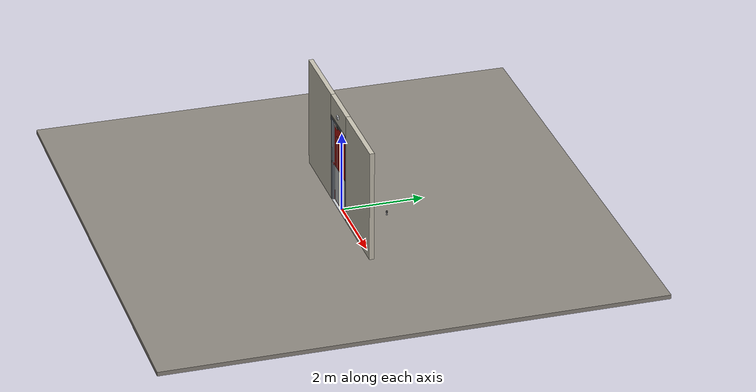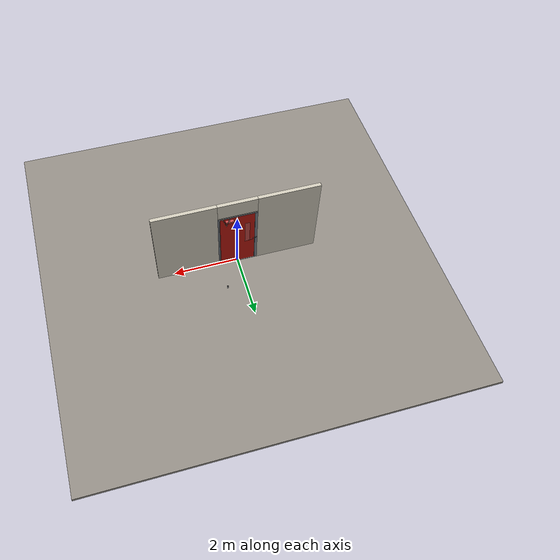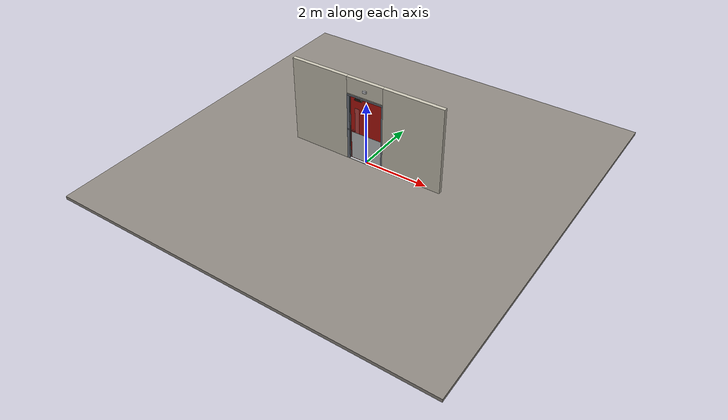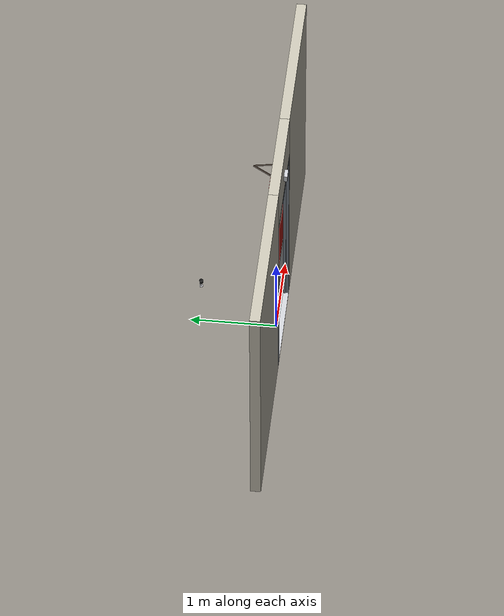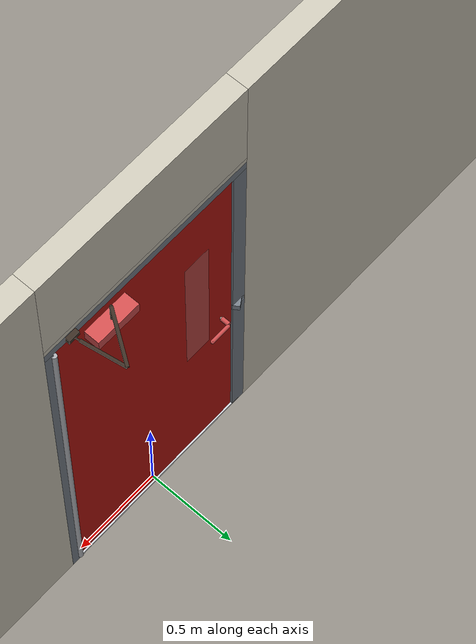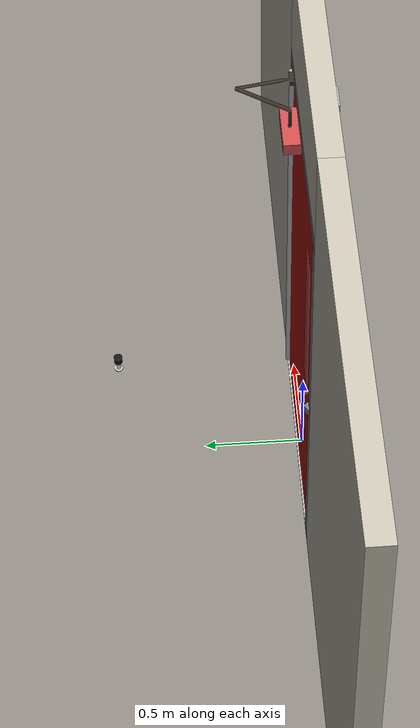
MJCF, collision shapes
<?xml version="1.0" ?>
<mujoco model="db0891_swing_single_full">
  <compiler angle="radian" meshdir="../../hardware" texturedir="../../textures" autolimits="true" inertiafromgeom="false"/>
  <option timestep="0.002" integrator="implicitfast" cone="elliptic" impratio="10" noslip_iterations="3">
    <flag multiccd="enable"/>
  </option>
  <size memory="16M"/>
  <default>
    <geom condim="4" solref="0.005 1" solimp="0.95 0.99 0.001"/>
    <joint solreflimit="0.005 1" solimplimit="0.95 0.99 0.001"/>
    <tendon solreflimit="0.005 1"/>
    <equality solref="0.002 1"/>
  </default>
  <visual>
    <headlight ambient="0.4 0.4 0.4" diffuse="0.7 0.7 0.7" specular="0.2 0.2 0.2"/>
    <quality shadowsize="4096"/>
    <map znear="0.01" zfar="60"/>
  </visual>
  <asset>
    <mesh name="closer_body_b226fdb10b" file="closer_body_b226fdb10b.obj"/>
    <mesh name="exit_sign_a6449bfa2c" file="exit_sign_a6449bfa2c.obj"/>
    <mesh name="lever_9f02b544cf" file="lever_9f02b544cf.obj"/>
    <material name="mat_floor" rgba="0.55 0.53 0.5 1" specular="0.2" shininess="0.15" reflectance="0"/>
    <material name="mat_wall" rgba="0.78 0.76 0.7 1" specular="0.2" shininess="0.1" reflectance="0"/>
    <material name="mat_leaf" rgba="0.7 0.08 0.05 1" specular="0.23" shininess="0.51" reflectance="0.02"/>
    <material name="mat_glass" rgba="0.85 0.92 0.95 0.25" specular="0.2" shininess="0.95" reflectance="0.1"/>
    <material name="mat_hinge" rgba="0.65 0.66 0.68 1" specular="0.74" shininess="0.5" reflectance="0.36"/>
    <material name="mat_op_nickel_satin" rgba="0.72 0.7 0.66 1" specular="0.8" shininess="0.65" reflectance="0.4"/>
    <material name="mat_trim" rgba="0.85 0.66 0.3 1" specular="0.8" shininess="0.75" reflectance="0.4"/>
    <material name="mat_bolt" rgba="0.85 0.66 0.3 1" specular="0.8" shininess="0.75" reflectance="0.4"/>
    <material name="mat_maglock" rgba="0.22 0.17 0.13 1" specular="0.8" shininess="0.6" reflectance="0.4"/>
    <material name="mat_frame" rgba="0.45 0.48 0.52 1" specular="0.32" shininess="0.6" reflectance="0.08"/>
    <material name="mat_seal" rgba="0.1 0.1 0.1 1" specular="0.2" shininess="0.1" reflectance="0"/>
    <material name="mat_threshold" rgba="0.8 0.81 0.83 1" specular="0.8" shininess="0.6" reflectance="0.4"/>
    <material name="mat_closer" rgba="0.22 0.17 0.13 1" specular="0.8" shininess="0.6" reflectance="0.4"/>
    <material name="mat_kick" rgba="0.75 0.76 0.77 1" specular="0.8" shininess="0.65" reflectance="0.4"/>
    <material name="mat_exit_sign" rgba="0.85 0.1 0.1 1" specular="0.2" shininess="0.6" reflectance="0"/>
    <material name="mat_sign_bracket" rgba="0.8 0.81 0.83 1" specular="0.8" shininess="0.6" reflectance="0.4"/>
    <material name="mat_bumper_stop" rgba="0.08 0.08 0.08 1" specular="0.2" shininess="0.1" reflectance="0"/>
    <material name="mat_stop_base" rgba="0.9 0.9 0.92 1" specular="0.8" shininess="0.9" reflectance="0.4"/>
    <texture name="skybox" type="skybox" builtin="gradient" rgb1="0.6 0.7 0.85" rgb2="0.9 0.92 0.95" width="256" height="256"/>
  </asset>
  <worldbody>
    <light name="sun" pos="1.5 -2.5 4" dir="-0.3 0.5 -0.8" directional="true" diffuse="0.8 0.8 0.8" specular="0.3 0.3 0.3" castshadow="true"/>
    <light name="fill" pos="-1.5 2.5 3" dir="0.3 -0.5 -0.7" directional="true" diffuse="0.35 0.35 0.4" castshadow="false"/>
    <camera name="robot_view" pos="0 -2.666313 1.812087" xyaxes="1 0 0 0 0.26963 0.962964" fovy="52"/>
    <camera name="far_view" pos="0 2.609312 1.812087" xyaxes="-1 0 0 0 -0.26963 0.962964" fovy="52"/>
    <camera name="iso" pos="-2.004737 -2.244263 2.234138" xyaxes="0.741536 -0.670913 0 0.242917 0.268487 0.932151" fovy="46"/>
    <camera name="detail_handle" pos="-0.183 -0.877 1.296" xyaxes="0.97561 0.219512 0 -0.070934 0.315262 0.94635" fovy="38"/>
    <geom name="floor" type="box" size="6 6 0.05" pos="0 0 -0.05" material="mat_floor" group="0" contype="1" conaffinity="1" friction="0.8 0.005 0.0001" density="2400"/>
    <geom name="wall_left" type="box" size="0.9415 0.0575 1.3735" pos="-1.5585 -0.0285 1.3735" material="mat_wall" group="0" contype="1" conaffinity="1" friction="0.6 0.005 0.0001" density="800"/>
    <geom name="wall_right" type="box" size="0.9565 0.0575 1.3735" pos="1.5435 -0.0285 1.3735" material="mat_wall" group="0" contype="1" conaffinity="1" friction="0.6 0.005 0.0001" density="800"/>
    <geom name="wall_header" type="box" size="0.602 0.0575 0.26" pos="-0.015 -0.0285 2.487" material="mat_wall" group="0" contype="1" conaffinity="1" friction="0.6 0.005 0.0001" density="800"/>
    <geom name="leaf_maglock_body" type="box" size="0.125 0.025 0.02" pos="-0.233 -0.057 2.082" material="mat_maglock" group="0" contype="1" conaffinity="1" friction="0.6 0.005 0.0001" density="2000"/>
    <geom name="leaf_maglock_bracket" type="box" size="0.09 0.025 0.0225" pos="-0.233 -0.057 2.1245" material="mat_maglock" group="1" contype="0" conaffinity="0" density="7850"/>
    <geom name="jamb_hinge" type="box" size="0.025 0.0575 1.0735" pos="0.562 -0.0285 1.0735" material="mat_frame" group="0" contype="1" conaffinity="1" friction="0.6 0.005 0.0001" density="300"/>
    <geom name="strike_1016_wall_n" type="box" size="0.04 0.03825 0.0183" pos="-0.577 -0.04775 1.016" material="mat_frame" group="0" contype="1" conaffinity="1" friction="0.6 0.005 0.0001" density="300"/>
    <geom name="strike_1016_wall_p" type="box" size="0.04 0.008 0.0183" pos="-0.577 0.0175 1.016" material="mat_frame" group="0" contype="1" conaffinity="1" friction="0.6 0.005 0.0001" density="300"/>
    <geom name="strike_1016_ramp" type="box" size="0.04 0.018028 0.0183" pos="-0.580282 0.018312 1.016" quat="0.957092 0 0 0.289784" material="mat_frame" group="0" contype="1" conaffinity="1" friction="0.12 0.005 0.0001" density="300"/>
    <geom name="strike_1016_back" type="box" size="0.0285 0.0095 0.0183" pos="-0.5885 0 1.016" material="mat_frame" group="0" contype="1" conaffinity="1" friction="0.6 0.005 0.0001" density="300"/>
    <geom name="jamb_strike_0" type="box" size="0.04 0.0575 0.49885" pos="-0.577 -0.0285 0.49885" material="mat_frame" group="0" contype="1" conaffinity="1" friction="0.6 0.005 0.0001" density="300"/>
    <geom name="jamb_strike_1" type="box" size="0.04 0.0575 0.55635" pos="-0.577 -0.0285 1.59065" material="mat_frame" group="0" contype="1" conaffinity="1" friction="0.6 0.005 0.0001" density="300"/>
    <geom name="jamb_head" type="box" size="0.602 0.0575 0.025" pos="-0.015 -0.0285 2.172" material="mat_frame" group="0" contype="1" conaffinity="1" friction="0.6 0.005 0.0001" density="300"/>
    <geom name="head_stud" type="box" size="0.602 0.0575 0.015" pos="-0.015 -0.0285 2.212" material="mat_wall" group="0" contype="1" conaffinity="1" friction="0.6 0.005 0.0001" density="500"/>
    <geom name="stop_hinge" type="box" size="0.0055 0.016 1.0735" pos="0.5315 -0.0385 1.0735" material="mat_frame" group="0" contype="1" conaffinity="1" friction="0.6 0.005 0.0001" density="300"/>
    <geom name="stop_strike" type="box" size="0.0055 0.016 1.0735" pos="-0.5315 -0.0385 1.0735" material="mat_frame" group="0" contype="1" conaffinity="1" friction="0.6 0.005 0.0001" density="300"/>
    <geom name="stop_head" type="box" size="0.537 0.016 0.0055" pos="0 -0.0385 2.1415" material="mat_frame" group="0" contype="1" conaffinity="1" friction="0.6 0.005 0.0001" density="300"/>
    <geom name="seal_hinge" type="box" size="0.004 0.0025 1.0735" pos="0.534 -0.0245 1.0735" material="mat_seal" group="1" contype="0" conaffinity="0" density="1100"/>
    <geom name="seal_strike" type="box" size="0.004 0.0025 1.0735" pos="-0.534 -0.0245 1.0735" material="mat_seal" group="1" contype="0" conaffinity="0" density="1100"/>
    <geom name="seal_head" type="box" size="0.517 0.0025 0.008" pos="0 -0.0245 2.135" material="mat_seal" group="1" contype="0" conaffinity="0" density="1100"/>
    <geom name="threshold" type="box" size="0.587 0.0575 0.0065" pos="0 -0.0285 0.0065" material="mat_threshold" group="0" contype="1" conaffinity="1" friction="0.5 0.005 0.0001" density="2700"/>
    <geom name="closer_bracket" type="box" size="0.03 0.012 0.014" pos="0.437 0.041 2.177" material="mat_closer" group="1" contype="0" conaffinity="0" density="2700"/>
    <geom name="exit_sign" type="mesh" mesh="exit_sign_a6449bfa2c" pos="0 -0.15 2.447" material="mat_exit_sign" group="2" contype="0" conaffinity="0" density="500"/>
    <geom name="exit_sign_bracket" type="box" size="0.05775 0.02 0.035" pos="0 -0.1055 2.447" material="mat_sign_bracket" group="2" contype="0" conaffinity="0" density="7850"/>
    <geom name="door_stop_base" type="cylinder" size="0.022 0.003" pos="0.55 0.93595 0.003" material="mat_stop_base" group="0" contype="1" conaffinity="1" friction="0.6 0.005 0.0001" density="7850"/>
    <geom name="door_stop_post" type="cylinder" size="0.012 0.0255" pos="0.55 0.93595 0.0315" material="mat_stop_base" group="0" contype="1" conaffinity="1" friction="0.6 0.005 0.0001" density="7850"/>
    <geom name="door_stop_bumper" type="cylinder" size="0.022 0.02" pos="0.55 0.93595 0.077" material="mat_bumper_stop" group="0" contype="1" conaffinity="1" friction="0.6 0.005 0.0001" density="1100"/>
    <site name="approach_point" pos="0 -1.5 0" quat="1 0 0 0" size="0.05" rgba="0.2 0.9 0.2 0.5" group="4"/>
    <site name="goal_point" pos="0 1.5 0" quat="1 0 0 0" size="0.05" rgba="0.2 0.9 0.2 0.5" group="4"/>
    <site name="door_plane_center" pos="0 0 1.0735" quat="1 0 0 0" size="0.02" rgba="0.2 0.9 0.2 0.5" group="4"/>
    <body name="leaf" pos="0.537 0 0">
      <inertial pos="-0.497605 0.003528 1.096088" mass="79.13314" quat="-0.494083 -0.478716 -0.513141 0.513224" diaginertia="7.536159754 34.660026678 42.122078536"/>
      <joint name="leaf_hinge" type="hinge" axis="0 0 -1" pos="-0.003 0.029 0" limited="true" range="0 1.570796" solreflimit="0.02 1" damping="10.49954" frictionloss="3.864023" stiffness="15.234311" springref="-3.060197" armature="0.02"/>
      <geom name="leaf_slab" type="box" size="0.5335 0.022 1.063" pos="-0.5365 0 1.08" material="mat_leaf" group="0" contype="1" conaffinity="1" friction="0.4 0.005 0.0001" density="1"/>
      <geom name="leaf_glass_0" type="box" size="0.075 0.0228 0.4252" pos="-0.84763 0 1.33512" material="mat_glass" group="1" contype="0" conaffinity="0" density="1"/>
      <geom name="hinge_continuous" type="cylinder" size="0.0136 1.053" pos="-0.003 0.029 1.08" material="mat_hinge" group="1" contype="0" conaffinity="0" density="2700"/>
      <geom name="leaf_latch_bolt_faceplate" type="box" size="0.0006 0.014 0.0283" pos="-1.0694 0 1.016" material="mat_bolt" group="1" contype="0" conaffinity="0" density="8500"/>
      <geom name="leaf_maglock_armature" type="box" size="0.09 0.005 0.02" pos="-0.77 -0.027 2.082" material="mat_maglock" group="1" contype="0" conaffinity="0" density="7800"/>
      <geom name="closer_body" type="mesh" mesh="closer_body_b226fdb10b" pos="-0.3 0.022 2.046" quat="0 0 0.707107 0.707107" material="mat_closer" group="1" contype="0" conaffinity="0" density="2000"/>
      <geom name="closer_body_col" type="box" size="0.12 0.04 0.03" pos="-0.3 0.062 2.046" material="mat_closer" group="3" contype="1" conaffinity="1" rgba="0.8 0.3 0.3 0.25" friction="0.6 0.005 0.0001" density="2000"/>
      <geom name="closer_pinion_shaft" type="cylinder" size="0.008 0.0655" pos="-0.3 0.064 2.1115" material="mat_closer" group="1" contype="0" conaffinity="0" density="2700"/>
      <geom name="armor_plate" type="box" size="0.5035 0.0008 0.45" pos="-0.5365 -0.0228 0.477" material="mat_kick" group="2" contype="0" conaffinity="0" density="7900"/>
      <site name="leaf_edge_mid" pos="-1.07 0 1.063" quat="1 0 0 0" size="0.02" rgba="0.2 0.9 0.2 0.5" group="4"/>
      <body name="leaf_handle" pos="-1 0 1.016">
        <inertial pos="0.028544 0 0" mass="0.978187" quat="0 0.707107 0.707107 0" diaginertia="0.001772047 0.003604455 0.005198299"/>
        <joint name="leaf_handle_hinge" type="hinge" axis="0 1 0" limited="true" range="0 0.96" damping="0.245624" frictionloss="0.048" stiffness="1.2" springref="-0.458333" armature="0.01"/>
        <geom name="leaf_handle_spindle" type="cylinder" size="0.006 0.03" pos="0 0 0" quat="0.707107 -0.707107 0 0" material="mat_op_nickel_satin" group="1" contype="0" conaffinity="0" density="7850"/>
        <geom name="leaf_handle_lever_n" type="mesh" mesh="lever_9f02b544cf" pos="0 -0.022 0" quat="0 0 -0.707107 0.707107" material="mat_op_nickel_satin" group="1" contype="0" conaffinity="0" density="3000"/>
        <geom name="leaf_handle_lever_col_n" type="capsule" size="0.0095 0.053" pos="0.0625 -0.077 0" quat="0.707107 0 0.707107 0" material="mat_op_nickel_satin" group="3" contype="1" conaffinity="1" rgba="0.8 0.3 0.3 0.25" friction="0.7 0.01 0.0001" density="3000"/>
        <geom name="leaf_handle_hub_col_n" type="cylinder" size="0.012 0.022" pos="0 -0.052 0" quat="0.707107 -0.707107 0 0" material="mat_op_nickel_satin" group="3" contype="1" conaffinity="1" rgba="0.8 0.3 0.3 0.25" friction="0.6 0.005 0.0001" density="3000"/>
        <geom name="leaf_handle_lever_p" type="mesh" mesh="lever_9f02b544cf" pos="0 0.022 0" quat="0 0 0.707107 0.707107" material="mat_op_nickel_satin" group="1" contype="0" conaffinity="0" density="3000"/>
        <geom name="leaf_handle_lever_col_p" type="capsule" size="0.0095 0.053" pos="0.0625 0.077 0" quat="0.707107 0 0.707107 0" material="mat_op_nickel_satin" group="3" contype="1" conaffinity="1" rgba="0.8 0.3 0.3 0.25" friction="0.7 0.01 0.0001" density="3000"/>
        <geom name="leaf_handle_hub_col_p" type="cylinder" size="0.012 0.022" pos="0 0.052 0" quat="0.707107 -0.707107 0 0" material="mat_op_nickel_satin" group="3" contype="1" conaffinity="1" rgba="0.8 0.3 0.3 0.25" friction="0.6 0.005 0.0001" density="3000"/>
        <site name="leaf_handle_grip_n" pos="0.1 -0.077 0" quat="1 0 0 0" size="0.012" rgba="0.2 0.9 0.2 0.5" group="4"/>
        <site name="leaf_handle_grip_p" pos="0.1 0.077 0" quat="1 0 0 0" size="0.012" rgba="0.2 0.9 0.2 0.5" group="4"/>
      </body>
      <body name="leaf_latch_bolt" pos="-1.07 0 1.016">
        <inertial pos="0.0055 0 0" mass="0.074627" quat="0.92388 0.382683 0 0" diaginertia="0.000002271 0.000013255 0.000013255"/>
        <joint name="leaf_latch_bolt_slide" type="slide" axis="1 0 0" limited="true" range="0 0.019" damping="2" frictionloss="0.3" stiffness="600" springref="-0.01" armature="0.1"/>
        <geom name="leaf_latch_bolt_capsule" type="capsule" size="0.008 0.0165" pos="0.0055 0 0" quat="0.707107 0 -0.707107 0" material="mat_bolt" group="0" contype="1" conaffinity="1" friction="0.2 0.005 0.0001" density="8500"/>
      </body>
      <body name="closer_arm_main" pos="-0.3 0.064 2.177" quat="0.881485 0 0 0.472212">
        <inertial pos="0.14 0 0" mass="0.12096" quat="1 0 0 0" diaginertia="0.000003588 0.00079128 0.000792852"/>
        <joint name="closer_pinion" type="hinge" axis="0 0 1" limited="false" damping="0.01" armature="0.002"/>
        <geom name="closer_arm_main_geom" type="box" size="0.14 0.008 0.005" pos="0.14 0 0" material="mat_closer" group="1" contype="0" conaffinity="0" density="2700"/>
        <body name="closer_arm_fore" pos="0.28 0 0" quat="0.371222 0 0 -0.928544">
          <inertial pos="0.128088 0 0" mass="0.076531" quat="1 0 0 0" diaginertia="0.000001771 0.000437665 0.000438201"/>
          <joint name="closer_elbow" type="hinge" axis="0 0 1" limited="false" damping="0.01" armature="0.002"/>
          <geom name="closer_arm_fore_geom" type="box" size="0.1125 0.007 0.004" pos="0.1125 0 0" material="mat_closer" group="1" contype="0" conaffinity="0" density="2700"/>
          <geom name="closer_fore_neck" type="box" size="0.0175 0.003 0.003" pos="0.2425 0 0" material="mat_closer" group="1" contype="0" conaffinity="0" density="2700"/>
          <geom name="closer_fore_pivot" type="cylinder" size="0.005 0.012" pos="0.26 0 0" material="mat_closer" group="1" contype="0" conaffinity="0" density="2700"/>
        </body>
      </body>
    </body>
  </worldbody>
  <tendon>
    <fixed name="leaf_latch_bolt_coupling" limited="true" range="0 10">
      <joint joint="leaf_latch_bolt_slide" coef="1"/>
      <joint joint="leaf_handle_hinge" coef="-0.020879"/>
    </fixed>
  </tendon>
  <equality>
    <weld name="leaf_maglock" body1="leaf" body2="world" active="true"/>
    <connect name="closer_arm_connect" body1="closer_arm_fore" body2="world" anchor="0.26 0 0" active="true"/>
  </equality>
  <contact>
    <exclude body1="closer_arm_main" body2="leaf"/>
    <exclude body1="closer_arm_fore" body2="leaf"/>
    <exclude body1="closer_arm_main" body2="closer_arm_fore"/>
  </contact>
  <sensor>
    <jointpos name="leaf_hinge_pos" joint="leaf_hinge"/>
    <jointvel name="leaf_hinge_vel" joint="leaf_hinge"/>
    <jointpos name="leaf_handle_hinge_pos" joint="leaf_handle_hinge"/>
    <jointvel name="leaf_handle_hinge_vel" joint="leaf_handle_hinge"/>
    <jointpos name="leaf_latch_bolt_slide_pos" joint="leaf_latch_bolt_slide"/>
    <jointvel name="leaf_latch_bolt_slide_vel" joint="leaf_latch_bolt_slide"/>
  </sensor>
</mujoco>
